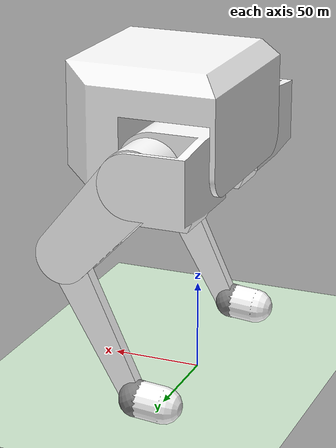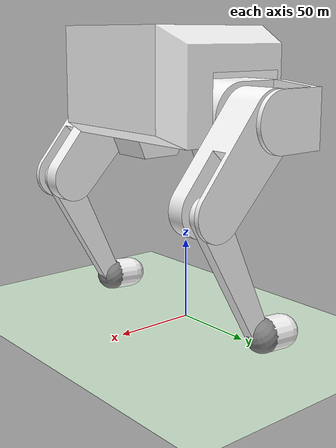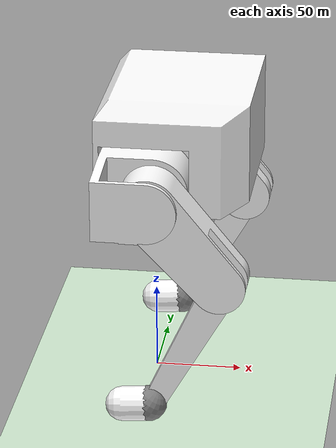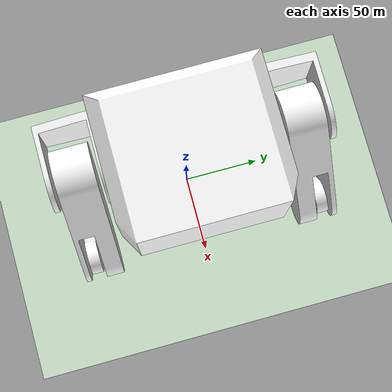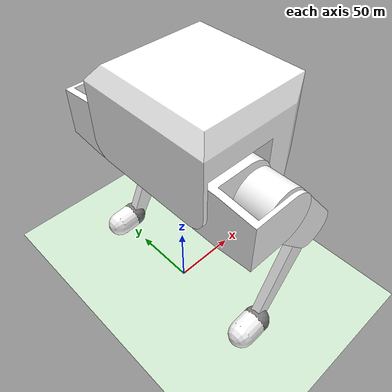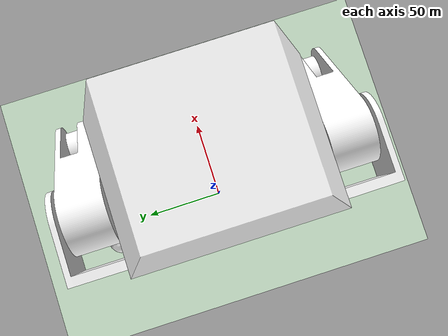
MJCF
<mujoco model="gnoci">
    <option timestep="0.005" gravity="0 0 -9810"/>
    <compiler angle="radian" meshdir="meshes" eulerseq="zyx" autolimits="true"/>

    <default>
        <joint
            limited="true"
            damping="0.01"
            armature="0.01"
            frictionloss="0.01"
        />
        <position
            kp="250000"
            dampratio="0.5"
            forcelimited="true"
            forcerange="-5000000 5000000"
        />
        <motor
            ctrlrange="-1 1"
            gear="1000000"
        />
        <default class="visualgeom">
            <geom
                material="visualgeom"
                condim="1"
                contype="0"
                conaffinity="0"
            />
        </default>

        <default class="body">
            <geom
                material="body"
                condim="1"
                friction=".7"
                solimp=".9 .99 .003"
                solref=".015 1"
            />
        </default>
    </default>

    <asset>
        <mesh name="body-main" content_type="model/stl" file="body-main.stl" />
        <mesh name="hip-left" content_type="model/stl" file="hip-left.stl" />
        <mesh name="hip-right" content_type="model/stl" file="hip-right.stl" />
        <mesh name="thigh-left" content_type="model/stl" file="thigh-left.stl" />
        <mesh name="thigh-right" content_type="model/stl" file="thigh-right.stl" />
        <mesh name="lower-leg-left" content_type="model/stl" file="lower-leg-left.stl" />
        <mesh
            name="lower-leg-right"
            content_type="model/stl"
            file="lower-leg-right.stl"
        />
        <texture builtin="checker" height="100" name="texplane" rgb1="0 0 0" rgb2="0.8 0.8 0.8" type="2d" width="100"/>
        <material name="MatPlane" reflectance="0.5" shininess="1" specular="1" texrepeat="60 60" texture="texplane"/>
        <material
            name="visualgeom"
            rgba="1 1 1 1"
        />
        <material
            name="body"
            rgba="0.5 0.9 0.2 0."
        />
    </asset>

    <worldbody>
        <light
            directional="true"
            diffuse="0.4 0.4 0.4"
            specular="0.1 0.1 0.1"
            pos="0 0 15.0"
            dir="0 0 -1"
            castshadow="false"
        />
        <geom condim="3" friction="1 .1 .1" material="MatPlane" name="floor" pos="0 0 0" rgba="0.8 0.9 0.8 1" size="1000 1000 0.125" type="plane"/>
        <camera
            name="track"
            mode="trackcom"
            pos="-250. -250. 375."
            xyaxes="0.7071 -0.7071 0 0.4082 0.4082 0.8165"
        />
        <body name="root" pos="0 0 157" quat="1 0 0 0">
            <freejoint name="root" />
            <site name="imu" size="0.01" pos="0 0 0" />
            <geom name="root" class="visualgeom" type="mesh" mesh="body-main" pos="0 0 0" quat="1 0 0 0"/>
            <geom class="body" type="box" size="43 50 15" pos="15 0 10"/>
            <geom class="body" type="box" size="10 50 17" pos="48 0 -23"/>
            <inertial mass="0.195" diaginertia="1000 1000 1000" pos="0 0 0"/>

            <body name="hip-left" pos="-1.5 -25 -30" quat="1 0 0 0">
                <geom class="visualgeom" type="mesh" mesh="hip-left" pos="0 0 0" quat="1 0 0 0"/>
                <geom class="body" type="cylinder" size="22 32" pos="0 -26 0" quat="1 1 0 0"/>
                <inertial mass='0.047' diaginertia="1000 1000 1000" pos="0 0 0"/>
                <joint name="hip-left-joint" pos="0 -10 0" axis="1 0 0" range="-0.38 0.42"/>

                <body name="thigh-left" pos="7 -30 5" quat="1 0 -0.38 0">
                    <geom class="visualgeom" type="mesh" mesh="thigh-left" pos="0 0 0" quat="1 0 0 0"/>
                    <inertial mass='0.041' diaginertia="1000 1000 1000" pos="0 0 0"/>
                    <joint name="thigh-left-joint" pos="0 0 0" axis="0 -1 0" range="-0.65 1"/>

                    <body name="lower-leg-left" pos="0 -12 -62" quat="1 0 0.75 0">
                        <geom class="visualgeom" type="mesh" mesh="lower-leg-left" pos="0 0 0" quat="1 0 0 0"/>
                        <geom class="body" type="capsule" size="10" fromto="0 0 0 5 -5 -85" pos="0 0 0" quat="1 0 0 0"/>
                        <inertial mass='0.01' diaginertia="1000 1000 1000" pos="0 0 0"/>
                        <joint name="lower-leg-left-joint" pos="0 0 0" axis="0 -1 0" range="-1.15 0.3"/>

                        <body name="foot-left" pos="5 -5 -85" quat="1 0 0 0">
                            <geom class="body" type="capsule" size="10" fromto="0 0 0 -12 0 -9" pos="0 0 0" quat="1 0 0 0"/>
                            <geom class="visualgeom" type="capsule" size="10" fromto="0 0 0 -12 0 -9" pos="0 0 0" quat="1 0 0 0"/>
                            <joint name="foot-left-joint" pos="0 0 0" axis="0 -1 0" range="-1 1"/>
                            <inertial mass='0.001' diaginertia="1000 1000 1000" pos="0 0 0"/>
                            <site name="foot-left" size="10.2" pos="0 0 0" />
                        </body>
                    </body>
                </body>
            </body>

            <body name="hip-right" pos="-1.5 25 -30" quat="1 0 0 0">
                <geom class="visualgeom" type="mesh" mesh="hip-right" pos="0 0 0" quat="1 0 0 0"/>
                <geom class="body" type="cylinder" size="22 32" pos="0 26 0" quat="1 1 0 0"/>
                <inertial mass='0.047' diaginertia="1000 1000 1000" pos="0 0 0"/>
                <joint name="hip-right-joint" pos="0 10 0" axis="1 0 0" range="-0.42 0.38"/>

                <body name="thigh-right" pos="7 30 5" quat="1 0 -0.38 0">
                    <geom class="visualgeom" type="mesh" mesh="thigh-right" pos="0 0 0" quat="1 0 0 0"/>
                    <inertial mass='0.041' diaginertia="1000 1000 1000" pos="0 0 0"/>
                    <joint name="thigh-right-joint" pos="0 0 0" axis="0 1 0" range="-1 0.65"/>

                    <body name="lower-leg-right" pos="0 12 -62" quat="1 0 0.75 0">
                        <geom class="visualgeom" type="mesh" mesh="lower-leg-right" pos="0 0 0" quat="1 0 0 0"/>
                        <geom class="body" type="capsule" size="10" fromto="0 0 0 5 5 -85" pos="0 0 0" quat="1 0 0 0"/>
                        <inertial mass='0.01' diaginertia="1000 1000 1000" pos="0 0 0"/>
                        <joint name="lower-leg-right-joint" pos="0 0 0" axis="0 1 0" range="-0.3 1.15"/>

                        <body name="foot-right" pos="5 5 -85" quat="1 0 0 0">
                            <geom class="body" type="capsule" size="10" fromto="0 0 0 -12 0 -9" pos="0 0 0" quat="1 0 0 0"/>
                            <geom class="visualgeom" type="capsule" size="10" fromto="0 0 0 -12 0 -9" pos="0 0 0" quat="1 0 0 0"/>
                            <joint name="foot-right-joint" pos="0 0 0" axis="0 1 0" range="-1 1"/>
                            <inertial mass='0.001' diaginertia="1000 1000 1000" pos="0 0 0"/>
                            <site name="foot-right" size="10.2" pos="0 0 0" />
                        </body>
                    </body>
                </body>
            </body>
        </body>
    </worldbody>

    <actuator>
        <motor name="servo-hip-left" joint="hip-left-joint"/>
        <motor name="servo-hip-right" joint="hip-right-joint"/>
        <motor name="servo-thigh-left" joint="thigh-left-joint"/>
        <motor name="servo-thigh-right" joint="thigh-right-joint"/>
        <motor name="servo-lower-leg-left" joint="lower-leg-left-joint"/>
        <motor name="servo-lower-leg-right" joint="lower-leg-right-joint"/>
        <motor name="servo-foot-left" joint="foot-left-joint"/>
        <motor name="servo-foot-right" joint="foot-right-joint"/>
    </actuator>

    <sensor>
        <actuatorpos name="hip-left-servo-pos" actuator="servo-hip-left" />
        <actuatorvel name="hip-left-servo-vel" actuator="servo-hip-left" />

        <actuatorpos name="thigh-left-servo-pos" actuator="servo-thigh-left" />
        <actuatorvel name="thigh-left-servo-vel" actuator="servo-thigh-left" />

        <actuatorpos name="lower-leg-left-servo-pos" actuator="servo-lower-leg-left" />
        <actuatorvel name="lower-leg-left-servo-vel" actuator="servo-lower-leg-left" />

        <actuatorpos name="hip-right-servo-pos" actuator="servo-hip-right" />
        <actuatorvel name="hip-right-servo-vel" actuator="servo-hip-right" />

        <actuatorpos name="thigh-right-servo-pos" actuator="servo-thigh-right" />
        <actuatorvel name="thigh-right-servo-vel" actuator="servo-thigh-right" />

        <actuatorpos name="lower-leg-right-servo-pos" actuator="servo-lower-leg-right" />
        <actuatorvel name="lower-leg-right-servo-vel" actuator="servo-lower-leg-right" />

        <actuatorpos name="foot-left-servo-pos" actuator="servo-foot-left" />
        <actuatorvel name="foot-left-servo-vel" actuator="servo-foot-left" />

        <actuatorpos name="foot-right-servo-pos" actuator="servo-foot-right" />
        <actuatorvel name="foot-right-servo-vel" actuator="servo-foot-right" />

        <gyro name="gyro" site="imu" noise="0.005" cutoff="34.9" />
        <accelerometer name="accel" site="imu" noise="0.01" cutoff="40"/>

        <touch name="left-foot-contact" site="foot-left"/>
        <touch name="right-foot-contact" site="foot-right"/>

    </sensor>
</mujoco>
